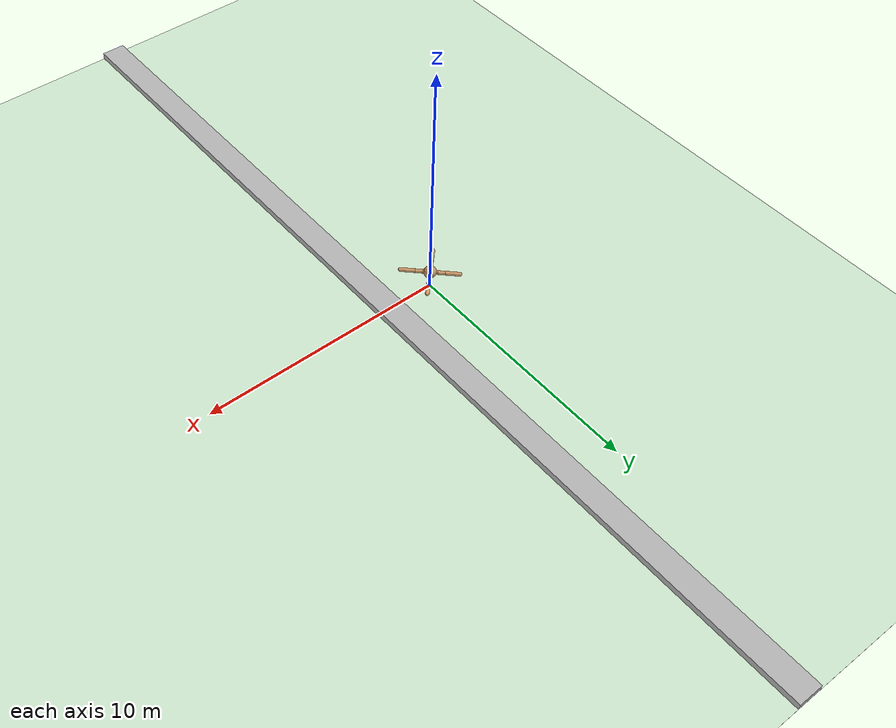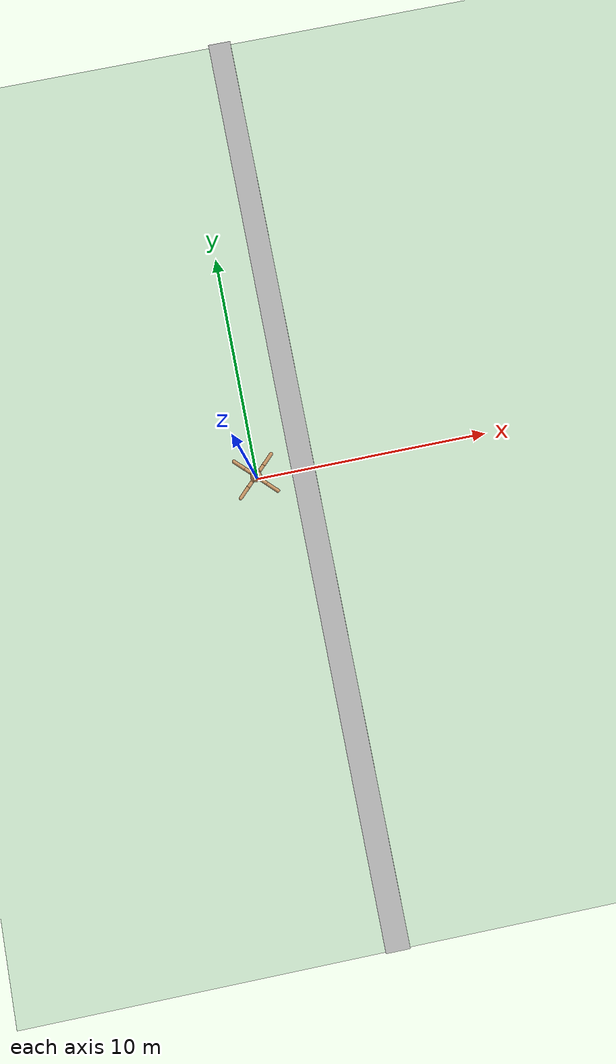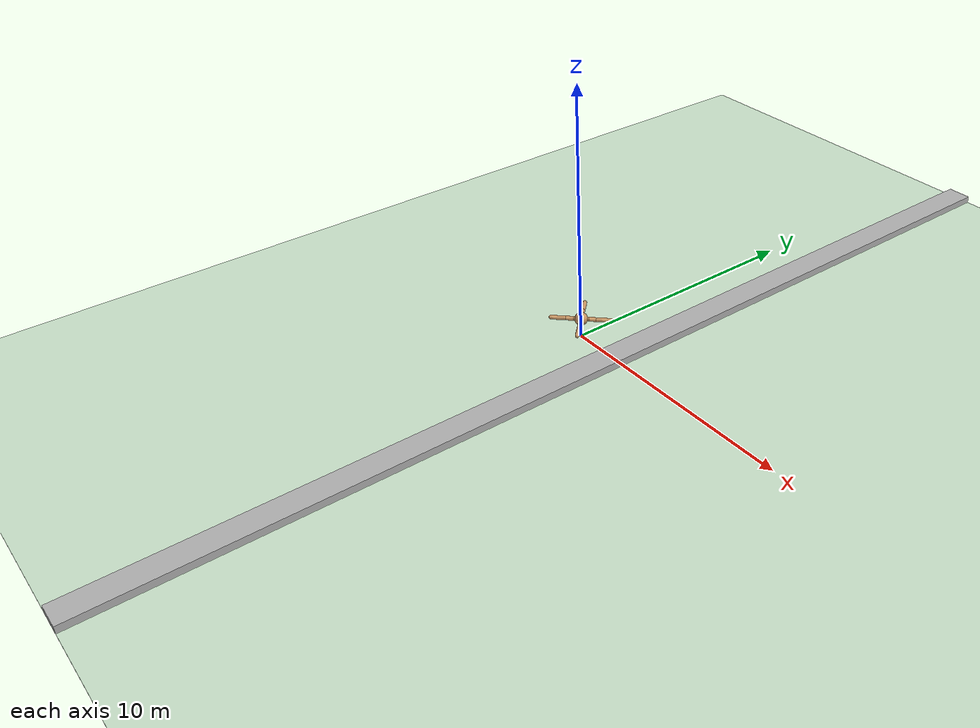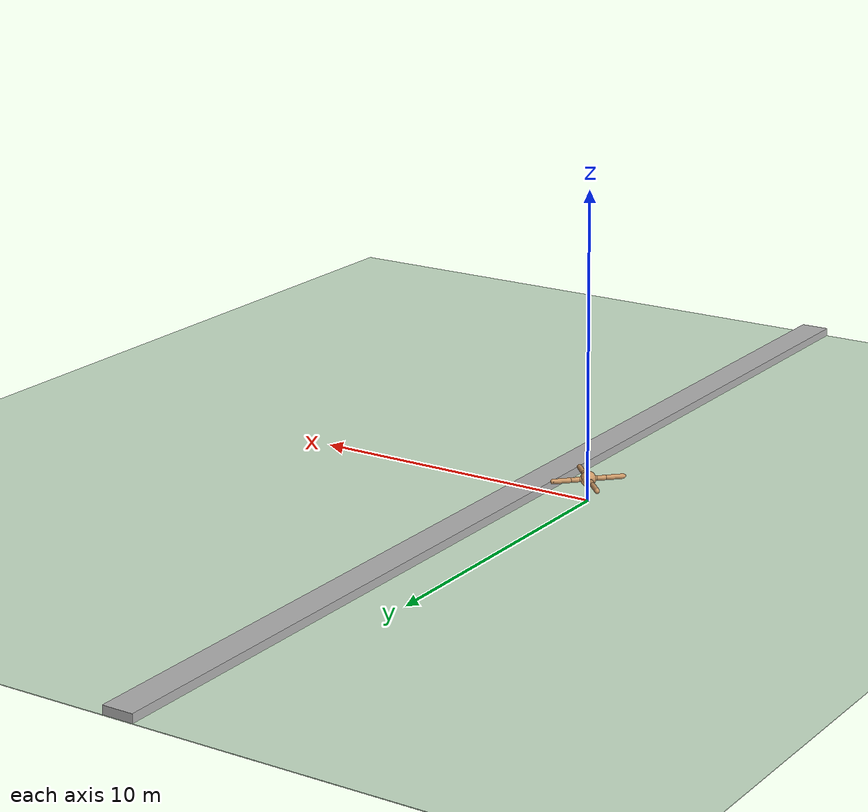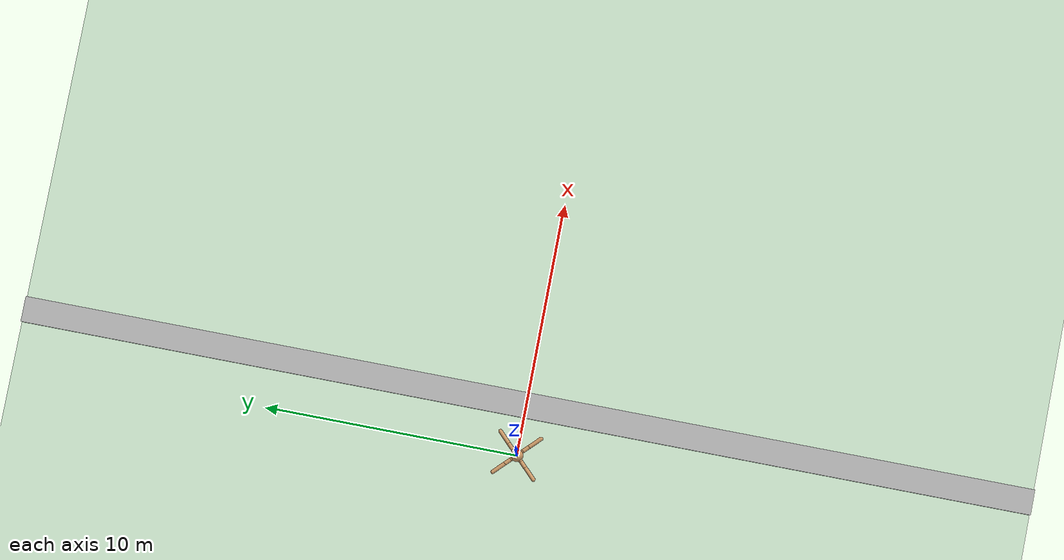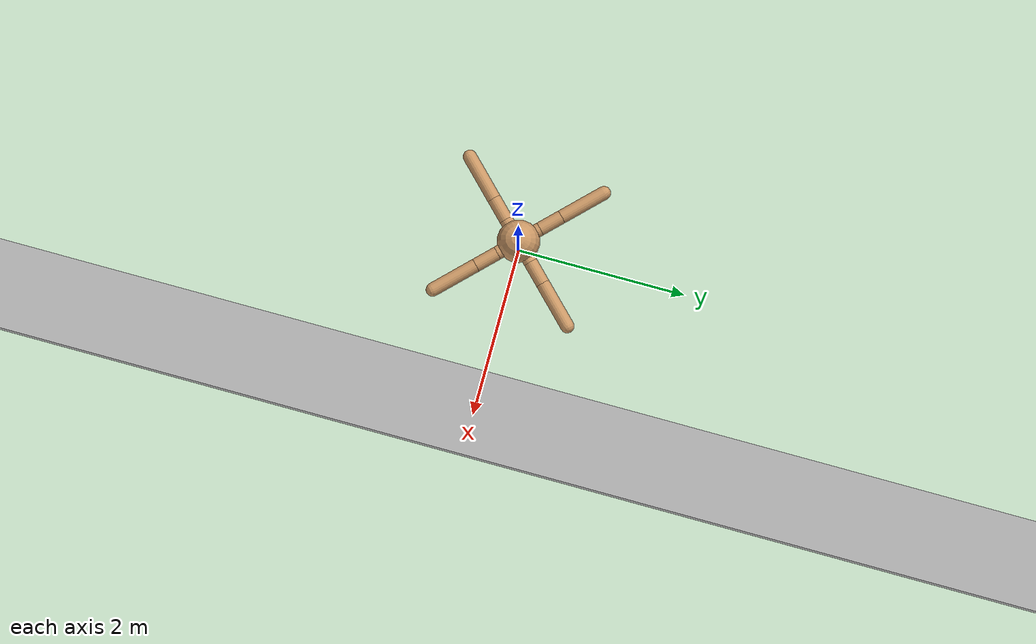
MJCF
<?xml version="1.0" ?>
<mujoco model="ant">
  <compiler angle="degree" coordinate="local" inertiafromgeom="true"/>
  <option integrator="RK4" timestep="0.01"/>

  <custom>
    <!-- initial qpos (same as default Ant_v5) -->
    <numeric
      name="init_qpos"
      data="0.0 0.0 0.55 1.0 0.0 0.0 0.0 0.0 1.0 0.0 -1.0 0.0 -1.0 0.0 1.0"/>
  </custom>

  <default>
    <joint armature="1" damping="1" limited="true"/>
    <!-- We leave geom default contype=1 but conaffinity=0 here,
         and override contype/conaffinity individually below. -->
    <geom
      conaffinity="0"
      condim="3"
      density="5.0"
      friction="1 0.5 0.5"
      margin="0.01"
      rgba="0.8 0.6 0.4 1"/>
  </default>

  <asset>
    <texture
      builtin="gradient"
      height="100"
      rgb1="1 1 1"
      rgb2="0 0 0"
      type="skybox"
      width="100"/>
    <texture
      builtin="flat"
      height="1278"
      mark="cross"
      markrgb="1 1 1"
      name="texgeom"
      random="0.01"
      rgb1="0.8 0.6 0.4"
      rgb2="0.8 0.6 0.4"
      type="cube"
      width="127"/>
    <texture
      builtin="checker"
      height="100"
      name="texplane"
      rgb1="0 0 0"
      rgb2="0.8 0.8 0.8"
      type="2d"
      width="100"/>

    <material
      name="MatPlane"
      reflectance="0.5"
      shininess="1"
      specular="1"
      texrepeat="60 60"
      texture="texplane"/>
    <material
      name="geom"
      texture="texgeom"
      texuniform="true"/>
  </asset>

  <worldbody>
    <light
      cutoff="100"
      diffuse="1 1 1"
      dir="-0 0 -1.3"
      directional="true"
      exponent="1"
      pos="0 0 1.3"
      specular=".1 .1 .1"/>

    <!-- ─────────── THICK “LANDING” FOR x < 0  ───────────
         • spans x∈[–15, 5], y∈[–20,20], z∈[–0.01,0.01]
         • contype="1" conaffinity="1" to ensure it collides with the Ant’s geoms
    -->
    <geom
      name="landing"
      type="box"
      size="50 20 0.01"
      pos="-5 0 0.01"
      contype="1"
      conaffinity="1"
      material="MatPlane"
      friction="1 0.5 0.5"
      rgba="0.8 0.9 0.8 1"/>

    <!-- STEP 1: spans x=[5.0…11], bottom at z=0.01, top at z=0.26 -->
    <geom
      name="step1"
      type="box"
      size="0.5 20 0.145"
      pos="2 0 0.155"
      contype="1"
      conaffinity="1"
      material="MatPlane"
      friction="1 0.5 0.5"
      rgba="0.7 0.7 0.7 1"/>

    <!-- STEP 2: spans x=[11…17], bottom at z=0.26, top at z=0.51 -->

    <!-- STEP 3: spans x=[17…23], bottom at z=0.51, top at z=0.76 -->

    <!-- STEP 4: spans x=[23…29], bottom at z=0.76, top at z=1.01 -->

    <!-- STEP 5: spans x=[2.0…2.5], bottom at z=1.01, top at z=1.26 -->

    <!-- ─────────── THE ANT’S BODY (capsules, joints, etc.) ─────────── -->
    <body name="torso" pos="0 0 0.75">
      <camera
        name="track"
        mode="trackcom"
        pos="0 -3 0.3"
        xyaxes="1 0 0 0 0 1"/>
      <geom
        name="torso_geom"
        pos="0 0 0"
        size="0.25"
        type="sphere"/>
      <joint
        armature="0"
        damping="0"
        limited="false"
        margin="0.01"
        name="root"
        pos="0 0 0"
        type="free"/>

      <!-- Front left leg -->
      <body name="front_left_leg" pos="0 0 0">
        <geom
          fromto="0.0 0.0 0.0 0.2 0.2 0.0"
          name="aux_1_geom"
          size="0.08"
          type="capsule"/>
        <body name="aux_1" pos="0.2 0.2 0">
          <joint
            axis="0 0 1"
            name="hip_1"
            pos="0.0 0.0 0.0"
            range="-30 30"
            type="hinge"/>
          <geom
            fromto="0.0 0.0 0.0 0.2 0.2 0.0"
            name="left_leg_geom"
            size="0.08"
            type="capsule"/>
          <body pos="0.2 0.2 0">
            <joint
              axis="-1 1 0"
              name="ankle_1"
              pos="0.0 0.0 0.0"
              range="30 70"
              type="hinge"/>
            <geom
              fromto="0.0 0.0 0.0 0.4 0.4 0.0"
              name="left_ankle_geom"
              size="0.08"
              type="capsule"/>
          </body>
        </body>
      </body>

      <!-- Front right leg -->
      <body name="front_right_leg" pos="0 0 0">
        <geom
          fromto="0.0 0.0 0.0 -0.2 0.2 0.0"
          name="aux_2_geom"
          size="0.08"
          type="capsule"/>
        <body name="aux_2" pos="-0.2 0.2 0">
          <joint
            axis="0 0 1"
            name="hip_2"
            pos="0.0 0.0 0.0"
            range="-30 30"
            type="hinge"/>
          <geom
            fromto="0.0 0.0 0.0 -0.2 0.2 0.0"
            name="right_leg_geom"
            size="0.08"
            type="capsule"/>
          <body pos="-0.2 0.2 0">
            <joint
              axis="1 1 0"
              name="ankle_2"
              pos="0.0 0.0 0.0"
              range="-70 -30"
              type="hinge"/>
            <geom
              fromto="0.0 0.0 0.0 -0.4 0.4 0.0"
              name="right_ankle_geom"
              size="0.08"
              type="capsule"/>
          </body>
        </body>
      </body>

      <!-- Back left leg -->
      <body name="back_leg" pos="0 0 0">
        <geom
          fromto="0.0 0.0 0.0 -0.2 -0.2 0.0"
          name="aux_3_geom"
          size="0.08"
          type="capsule"/>
        <body name="aux_3" pos="-0.2 -0.2 0">
          <joint
            axis="0 0 1"
            name="hip_3"
            pos="0.0 0.0 0.0"
            range="-30 30"
            type="hinge"/>
          <geom
            fromto="0.0 0.0 0.0 -0.2 -0.2 0.0"
            name="back_leg_geom"
            size="0.08"
            type="capsule"/>
          <body pos="-0.2 -0.2 0">
            <joint
              axis="-1 1 0"
              name="ankle_3"
              pos="0.0 0.0 0.0"
              range="-70 -30"
              type="hinge"/>
            <geom
              fromto="0.0 0.0 0.0 -0.4 -0.4 0.0"
              name="third_ankle_geom"
              size="0.08"
              type="capsule"/>
          </body>
        </body>
      </body>

      <!-- Back right leg -->
      <body name="right_back_leg" pos="0 0 0">
        <geom
          fromto="0.0 0.0 0.0 0.2 -0.2 0.0"
          name="aux_4_geom"
          size="0.08"
          type="capsule"/>
        <body name="aux_4" pos="0.2 -0.2 0">
          <joint
            axis="0 0 1"
            name="hip_4"
            pos="0.0 0.0 0.0"
            range="-30 30"
            type="hinge"/>
          <geom
            fromto="0.0 0.0 0.0 0.2 -0.2 0.0"
            name="rightback_leg_geom"
            size="0.08"
            type="capsule"/>
          <body pos="0.2 -0.2 0">
            <joint
              axis="1 1 0"
              name="ankle_4"
              pos="0.0 0.0 0.0"
              range="30 70"
              type="hinge"/>
            <geom
              fromto="0.0 0.0 0.0 0.4 -0.4 0.0"
              name="fourth_ankle_geom"
              size="0.08"
              type="capsule"/>
          </body>
        </body>
      </body>
    </body>
  </worldbody>

  <actuator>
    <motor ctrllimited="true" ctrlrange="-1.0 1.0" joint="hip_4" gear="150"/>
    <motor ctrllimited="true" ctrlrange="-1.0 1.0" joint="ankle_4" gear="150"/>
    <motor ctrllimited="true" ctrlrange="-1.0 1.0" joint="hip_1" gear="150"/>
    <motor ctrllimited="true" ctrlrange="-1.0 1.0" joint="ankle_1" gear="150"/>
    <motor ctrllimited="true" ctrlrange="-1.0 1.0" joint="hip_2" gear="150"/>
    <motor ctrllimited="true" ctrlrange="-1.0 1.0" joint="ankle_2" gear="150"/>
    <motor ctrllimited="true" ctrlrange="-1.0 1.0" joint="hip_3" gear="150"/>
    <motor ctrllimited="true" ctrlrange="-1.0 1.0" joint="ankle_3" gear="150"/>
  </actuator>
</mujoco>
